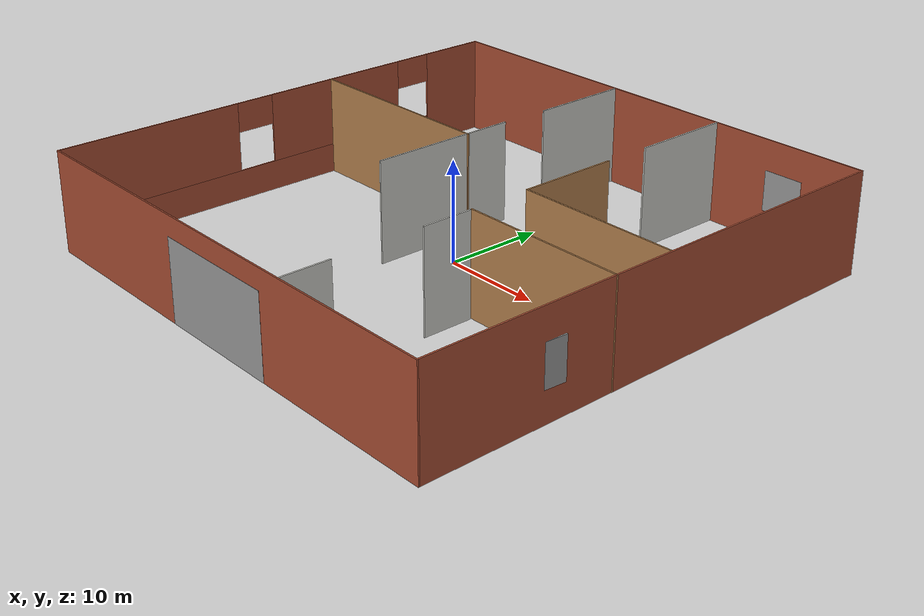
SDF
<?xml version='1.0'?>
<sdf version='1.6'>
  <model name='simplefloor'>
    <pose frame=''>-0.015498 0 0 0 -0 0</pose>
    <link name='Door_0'>
      <collision name='Door_0_Collision'>
        <geometry>
          <box>
            <size>13 0.17 8</size>
          </box>
        </geometry>
        <pose frame=''>0 0 4 0 -0 0</pose>
      </collision>
      <visual name='Door_0_Visual'>
        <pose frame=''>0 0 4 0 -0 0</pose>
        <geometry>
          <box>
            <size>13 0.17 8</size>
          </box>
        </geometry>
        <material>
          <script>
            <uri>file://media/materials/scripts/gazebo.material</uri>
            <name>Gazebo/Grey</name>
          </script>
        </material>
      </visual>
      <pose frame=''>0.015498 -25 0 0 -0 0</pose>
    </link>
    <link name='Wall_0'>
      <collision name='Wall_0_Collision'>
        <geometry>
          <box>
            <size>0.15 0.15 2.5</size>
          </box>
        </geometry>
        <pose frame=''>0 0 1.25 0 -0 0</pose>
      </collision>
      <visual name='Wall_0_Visual'>
        <pose frame=''>0 0 1.25 0 -0 0</pose>
        <geometry>
          <box>
            <size>0.15 0.15 2.5</size>
          </box>
        </geometry>
        <material>
          <script>
            <uri>file://media/materials/scripts/gazebo.material</uri>
            <name>Gazebo/Grey</name>
          </script>
          <ambient>1 1 1 1</ambient>
        </material>
        <meta>
          <layer>0</layer>
        </meta>
      </visual>
      <pose frame=''>-24.9845 25 0 0 -0 0</pose>
    </link>
    <link name='Wall_1'>
      <collision name='Wall_1_Collision'>
        <geometry>
          <box>
            <size>50.15 0.15 10</size>
          </box>
        </geometry>
        <pose frame=''>0 0 5 0 -0 0</pose>
      </collision>
      <visual name='Wall_1_Visual'>
        <pose frame=''>0 0 5 0 -0 0</pose>
        <geometry>
          <box>
            <size>50.15 0.15 10</size>
          </box>
        </geometry>
        <material>
          <script>
            <uri>file://media/materials/scripts/gazebo.material</uri>
            <name>Gazebo/Bricks</name>
          </script>
          <ambient>1 0.764706 0.305882 1</ambient>
        </material>
        <meta>
          <layer>0</layer>
        </meta>
      </visual>
      <pose frame=''>0.015498 25 0 0 -0 0</pose>
    </link>
    <link name='Wall_14'>
      <collision name='Wall_14_Collision'>
        <geometry>
          <box>
            <size>10 0.15 10</size>
          </box>
        </geometry>
        <pose frame=''>0 0 5 0 -0 0</pose>
      </collision>
      <visual name='Wall_14_Visual'>
        <pose frame=''>0 0 5 0 -0 0</pose>
        <geometry>
          <box>
            <size>10 0.15 10</size>
          </box>
        </geometry>
        <material>
          <script>
            <uri>file://media/materials/scripts/gazebo.material</uri>
            <name>Gazebo/Wood</name>
          </script>
          <ambient>0.435294 0.796078 0.67451 1</ambient>
        </material>
        <meta>
          <layer>0</layer>
        </meta>
      </visual>
      <pose frame=''>9.0155 5.279 0 0 0 -1.5708</pose>
    </link>
    <link name='Wall_16'>
      <collision name='Wall_16_Collision'>
        <geometry>
          <box>
            <size>10 0.15 10</size>
          </box>
        </geometry>
        <pose frame=''>0 0 5 0 -0 0</pose>
      </collision>
      <visual name='Wall_16_Visual'>
        <pose frame=''>0 0 5 0 -0 0</pose>
        <geometry>
          <box>
            <size>10 0.15 10</size>
          </box>
        </geometry>
        <material>
          <script>
            <uri>file://media/materials/scripts/gazebo.material</uri>
            <name>Gazebo/CeilingTiled</name>
          </script>
          <ambient>0.435294 0.796078 0.67451 1</ambient>
        </material>
        <meta>
          <layer>0</layer>
        </meta>
      </visual>
      <pose frame=''>-3.9845 19.925 0 0 -0 1.5708</pose>
    </link>
    <link name='Wall_18'>
      <collision name='Wall_18_Collision'>
        <geometry>
          <box>
            <size>10.15 0.15 10</size>
          </box>
        </geometry>
        <pose frame=''>0 0 5 0 -0 0</pose>
      </collision>
      <visual name='Wall_18_Visual'>
        <pose frame=''>0 0 5 0 -0 0</pose>
        <geometry>
          <box>
            <size>10.15 0.15 10</size>
          </box>
        </geometry>
        <material>
          <script>
            <uri>file://media/materials/scripts/gazebo.material</uri>
            <name>Gazebo/CeilingTiled</name>
          </script>
          <ambient>0.435294 0.796078 0.67451 1</ambient>
        </material>
        <meta>
          <layer>0</layer>
        </meta>
      </visual>
      <pose frame=''>9.0155 20 0 0 -0 1.5708</pose>
    </link>
    <link name='Wall_2'>
      <collision name='Wall_2_Collision'>
        <geometry>
          <box>
            <size>50.15 0.15 10</size>
          </box>
        </geometry>
        <pose frame=''>0 0 5 0 -0 0</pose>
      </collision>
      <visual name='Wall_2_Visual'>
        <pose frame=''>0 0 5 0 -0 0</pose>
        <geometry>
          <box>
            <size>50.15 0.15 10</size>
          </box>
        </geometry>
        <material>
          <script>
            <uri>file://media/materials/scripts/gazebo.material</uri>
            <name>Gazebo/Bricks</name>
          </script>
          <ambient>1 0.764706 0.305882 1</ambient>
        </material>
        <meta>
          <layer>0</layer>
        </meta>
      </visual>
      <pose frame=''>25.0155 0 0 0 0 -1.5708</pose>
    </link>
    <link name='Wall_20'>
      <collision name='Wall_20_Collision'>
        <geometry>
          <box>
            <size>15 0.15 10</size>
          </box>
        </geometry>
        <pose frame=''>0 0 5 0 -0 0</pose>
      </collision>
      <visual name='Wall_20_Visual'>
        <pose frame=''>0 0 5 0 -0 0</pose>
        <geometry>
          <box>
            <size>15 0.15 10</size>
          </box>
        </geometry>
        <material>
          <script>
            <uri>file://media/materials/scripts/gazebo.material</uri>
            <name>Gazebo/CeilingTiled</name>
          </script>
          <ambient>0.435294 0.796078 0.67451 1</ambient>
        </material>
        <meta>
          <layer>0</layer>
        </meta>
      </visual>
      <pose frame=''>-4.1455 2.575 0 0 0 -1.5708</pose>
    </link>
    <link name='Wall_22'>
      <collision name='Wall_22_Collision'>
        <geometry>
          <box>
            <size>21.136 0.15 10</size>
          </box>
        </geometry>
        <pose frame=''>0 0 5 0 -0 0</pose>
      </collision>
      <visual name='Wall_22_Visual'>
        <pose frame=''>0 0 5 0 -0 0</pose>
        <geometry>
          <box>
            <size>21.136 0.15 10</size>
          </box>
        </geometry>
        <material>
          <script>
            <uri>file://media/materials/scripts/gazebo.material</uri>
            <name>Gazebo/Wood</name>
          </script>
          <ambient>0.996078 0.47451 0.0196078 1</ambient>
        </material>
        <meta>
          <layer>0</layer>
        </meta>
      </visual>
      <pose frame=''>-14.5225 5.323 0 0 -0 0</pose>
    </link>
    <link name='Wall_24'>
      <collision name='Wall_24_Collision'>
        <geometry>
          <box>
            <size>5 0.15 10</size>
          </box>
        </geometry>
        <pose frame=''>0 0 5 0 -0 0</pose>
      </collision>
      <visual name='Wall_24_Visual'>
        <pose frame=''>0 0 5 0 -0 0</pose>
        <geometry>
          <box>
            <size>5 0.15 10</size>
          </box>
        </geometry>
        <material>
          <script>
            <uri>file://media/materials/scripts/gazebo.material</uri>
            <name>Gazebo/CeilingTiled</name>
          </script>
          <ambient>0.435294 0.796078 0.67451 1</ambient>
        </material>
        <meta>
          <layer>0</layer>
        </meta>
      </visual>
      <pose frame=''>9.0155 -22.575 0 0 -0 1.5708</pose>
    </link>
    <link name='Wall_26'>
      <collision name='Wall_26_Collision'>
        <geometry>
          <box>
            <size>16.15 0.15 10</size>
          </box>
        </geometry>
        <pose frame=''>0 0 5 0 -0 0</pose>
      </collision>
      <visual name='Wall_26_Visual'>
        <pose frame=''>0 0 5 0 -0 0</pose>
        <geometry>
          <box>
            <size>16.15 0.15 10</size>
          </box>
        </geometry>
        <material>
          <script>
            <uri>file://media/materials/scripts/gazebo.material</uri>
            <name>Gazebo/Wood</name>
          </script>
          <ambient>0.996078 0.47451 0.0196078 1</ambient>
        </material>
        <meta>
          <layer>0</layer>
        </meta>
      </visual>
      <pose frame=''>17.0155 -5.831 0 0 -0 0</pose>
    </link>
    <link name='Wall_28'>
      <collision name='Wall_28_Collision'>
        <geometry>
          <box>
            <size>5 0.15 10</size>
          </box>
        </geometry>
        <pose frame=''>0 0 5 0 -0 0</pose>
      </collision>
      <visual name='Wall_28_Visual'>
        <pose frame=''>0 0 5 0 -0 0</pose>
        <geometry>
          <box>
            <size>5 0.15 10</size>
          </box>
        </geometry>
        <material>
          <script>
            <uri>file://media/materials/scripts/gazebo.material</uri>
            <name>Gazebo/CeilingTiled</name>
          </script>
          <ambient>0.435294 0.796078 0.67451 1</ambient>
        </material>
        <meta>
          <layer>0</layer>
        </meta>
      </visual>
      <pose frame=''>9.0155 -8.519 0 0 -0 1.5708</pose>
    </link>
    <link name='Wall_3'>
      <collision name='Wall_3_Collision'>
        <geometry>
          <box>
            <size>50.15 0.15 10</size>
          </box>
        </geometry>
        <pose frame=''>0 0 5 0 -0 0</pose>
      </collision>
      <visual name='Wall_3_Visual'>
        <pose frame=''>0 0 5 0 -0 0</pose>
        <geometry>
          <box>
            <size>50.15 0.15 10</size>
          </box>
        </geometry>
        <material>
          <script>
            <uri>file://media/materials/scripts/gazebo.material</uri>
            <name>Gazebo/Bricks</name>
          </script>
          <ambient>1 0.764706 0.305882 1</ambient>
        </material>
        <meta>
          <layer>0</layer>
        </meta>
      </visual>
      <pose frame=''>0.015498 -25 0 0 -0 3.14159</pose>
    </link>
    <link name='Wall_30'>
      <collision name='Wall_30_Collision'>
        <geometry>
          <box>
            <size>16.15 0.15 10</size>
          </box>
        </geometry>
        <pose frame=''>0 0 5 0 -0 0</pose>
      </collision>
      <visual name='Wall_30_Visual'>
        <pose frame=''>0 0 5 0 -0 0</pose>
        <geometry>
          <box>
            <size>16.15 0.15 10</size>
          </box>
        </geometry>
        <material>
          <script>
            <uri>file://media/materials/scripts/gazebo.material</uri>
            <name>Gazebo/Wood</name>
          </script>
          <ambient>0.996078 0.47451 0.0196078 1</ambient>
        </material>
        <meta>
          <layer>0</layer>
        </meta>
      </visual>
      <pose frame=''>17.0155 0.354 0 0 -0 0</pose>
    </link>
    <link name='Wall_5'>
      <collision name='Wall_5_Collision'>
        <geometry>
          <box>
            <size>0.15 0.15 2.5</size>
          </box>
        </geometry>
        <pose frame=''>0 0 1.25 0 -0 0</pose>
      </collision>
      <visual name='Wall_5_Visual'>
        <pose frame=''>0 0 1.25 0 -0 0</pose>
        <geometry>
          <box>
            <size>0.15 0.15 2.5</size>
          </box>
        </geometry>
        <material>
          <script>
            <uri>file://media/materials/scripts/gazebo.material</uri>
            <name>Gazebo/Grey</name>
          </script>
          <ambient>1 1 1 1</ambient>
        </material>
        <meta>
          <layer>0</layer>
        </meta>
      </visual>
      <pose frame=''>-24.9845 25 0 0 -0 0</pose>
    </link>
    <link name='Wall_7'>
      <pose frame=''>-24.9845 0.075 0 0 0 -1.5708</pose>
      <visual name='Wall_7_Visual_0'>
        <pose frame=''>-21.4625 0 5 0 -0 0</pose>
        <geometry>
          <box>
            <size>7.075 0.15 10</size>
          </box>
        </geometry>
        <material>
          <script>
            <uri>file://media/materials/scripts/gazebo.material</uri>
            <name>Gazebo/Bricks</name>
          </script>
          <ambient>1 0.764706 0.305882 1</ambient>
        </material>
        <meta>
          <layer>0</layer>
        </meta>
      </visual>
      <collision name='Wall_7_Collision_0'>
        <geometry>
          <box>
            <size>7.075 0.15 10</size>
          </box>
        </geometry>
        <pose frame=''>-21.4625 0 5 0 -0 0</pose>
      </collision>
      <visual name='Wall_7_Visual_1'>
        <pose frame=''>3.5375 0 1.5 0 -0 0</pose>
        <geometry>
          <box>
            <size>42.925 0.15 3</size>
          </box>
        </geometry>
        <material>
          <script>
            <uri>file://media/materials/scripts/gazebo.material</uri>
            <name>Gazebo/Bricks</name>
          </script>
          <ambient>1 0.764706 0.305882 1</ambient>
        </material>
        <meta>
          <layer>0</layer>
        </meta>
      </visual>
      <collision name='Wall_7_Collision_1'>
        <geometry>
          <box>
            <size>42.925 0.15 3</size>
          </box>
        </geometry>
        <pose frame=''>3.5375 0 1.5 0 -0 0</pose>
      </collision>
      <visual name='Wall_7_Visual_2'>
        <pose frame=''>-5.925 0 6.5 0 -0 0</pose>
        <geometry>
          <box>
            <size>16 0.15 7</size>
          </box>
        </geometry>
        <material>
          <script>
            <uri>file://media/materials/scripts/gazebo.material</uri>
            <name>Gazebo/Bricks</name>
          </script>
          <ambient>1 0.764706 0.305882 1</ambient>
        </material>
        <meta>
          <layer>0</layer>
        </meta>
      </visual>
      <collision name='Wall_7_Collision_2'>
        <geometry>
          <box>
            <size>16 0.15 7</size>
          </box>
        </geometry>
        <pose frame=''>-5.925 0 6.5 0 -0 0</pose>
      </collision>
      <visual name='Wall_7_Visual_3'>
        <pose frame=''>15.5375 0 6.5 0 -0 0</pose>
        <geometry>
          <box>
            <size>18.925 0.15 7</size>
          </box>
        </geometry>
        <material>
          <script>
            <uri>file://media/materials/scripts/gazebo.material</uri>
            <name>Gazebo/Bricks</name>
          </script>
          <ambient>1 0.764706 0.305882 1</ambient>
        </material>
        <meta>
          <layer>0</layer>
        </meta>
      </visual>
      <collision name='Wall_7_Collision_3'>
        <geometry>
          <box>
            <size>18.925 0.15 7</size>
          </box>
        </geometry>
        <pose frame=''>15.5375 0 6.5 0 -0 0</pose>
      </collision>
      <visual name='Wall_7_Visual_4'>
        <pose frame=''>-15.925 0 8.5 0 -0 0</pose>
        <geometry>
          <box>
            <size>4 0.15 3</size>
          </box>
        </geometry>
        <material>
          <script>
            <uri>file://media/materials/scripts/gazebo.material</uri>
            <name>Gazebo/Bricks</name>
          </script>
          <ambient>1 0.764706 0.305882 1</ambient>
        </material>
        <meta>
          <layer>0</layer>
        </meta>
      </visual>
      <collision name='Wall_7_Collision_4'>
        <geometry>
          <box>
            <size>4 0.15 3</size>
          </box>
        </geometry>
        <pose frame=''>-15.925 0 8.5 0 -0 0</pose>
      </collision>
      <visual name='Wall_7_Visual_5'>
        <pose frame=''>4.075 0 8.5 0 -0 0</pose>
        <geometry>
          <box>
            <size>4 0.15 3</size>
          </box>
        </geometry>
        <material>
          <script>
            <uri>file://media/materials/scripts/gazebo.material</uri>
            <name>Gazebo/Bricks</name>
          </script>
          <ambient>1 0.764706 0.305882 1</ambient>
        </material>
        <meta>
          <layer>0</layer>
        </meta>
      </visual>
      <collision name='Wall_7_Collision_5'>
        <geometry>
          <box>
            <size>4 0.15 3</size>
          </box>
        </geometry>
        <pose frame=''>4.075 0 8.5 0 -0 0</pose>
      </collision>
    </link>
    <link name='Window_2'>
      <collision name='Window_2_Collision'>
        <geometry>
          <box>
            <size>4 0.17 4</size>
          </box>
        </geometry>
        <pose frame=''>0 0 2 0 -0 0</pose>
      </collision>
      <visual name='Window_2_Visual'>
        <pose frame=''>0 0 2 0 -0 0</pose>
        <geometry>
          <box>
            <size>4 0.17 4</size>
          </box>
        </geometry>
        <material>
          <script>
            <uri>file://media/materials/scripts/gazebo.material</uri>
            <name>Gazebo/Grey</name>
          </script>
        </material>
      </visual>
      <pose frame=''>25.0155 -13 3 0 0 -1.63783</pose>
    </link>
    <link name='Window_4'>
      <collision name='Window_4_Collision'>
        <geometry>
          <box>
            <size>4 0.17 4</size>
          </box>
        </geometry>
        <pose frame=''>0 0 2 0 -0 0</pose>
      </collision>
      <visual name='Window_4_Visual'>
        <pose frame=''>0 0 2 0 -0 0</pose>
        <geometry>
          <box>
            <size>4 0.17 4</size>
          </box>
        </geometry>
        <material>
          <script>
            <uri>file://media/materials/scripts/gazebo.material</uri>
            <name>Gazebo/Grey</name>
          </script>
        </material>
      </visual>
      <pose frame=''>17.0155 25 3 0 -0 0</pose>
    </link>
    <static>1</static>
  </model>
</sdf>
